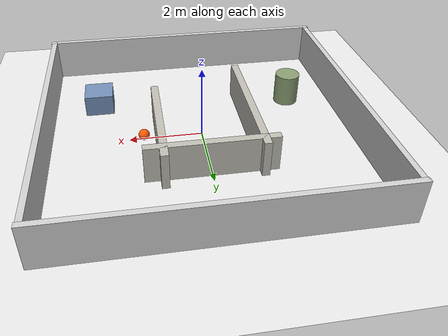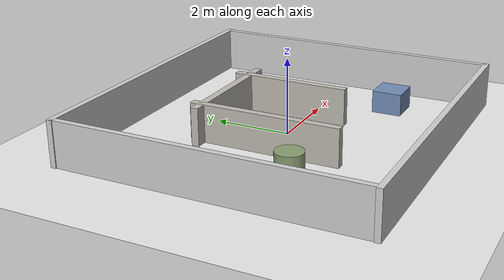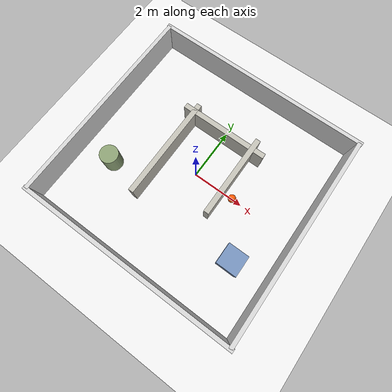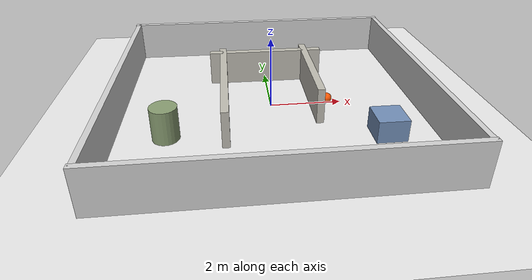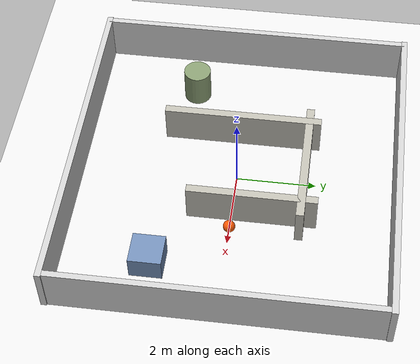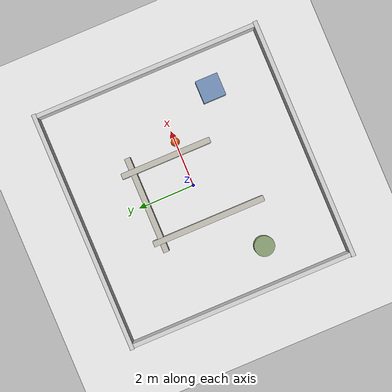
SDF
<?xml version="1.0"?>
<sdf version="1.9">
  <world name="robis_turtlebot3_like">
    <gravity>0 0 -9.8</gravity>
    <magnetic_field>6e-06 2.3e-05 -4.2e-05</magnetic_field>
    <atmosphere type="adiabatic"/>

    <plugin filename="gz-sim-physics-system" name="gz::sim::systems::Physics"/>
    <plugin filename="gz-sim-user-commands-system" name="gz::sim::systems::UserCommands"/>
    <plugin filename="gz-sim-scene-broadcaster-system" name="gz::sim::systems::SceneBroadcaster"/>
    <plugin filename="gz-sim-sensors-system" name="gz::sim::systems::Sensors">
      <render_engine>ogre2</render_engine>
    </plugin>

    <light type="directional" name="sun">
      <cast_shadows>true</cast_shadows>
      <pose>0 0 10 0 0 0</pose>
      <diffuse>0.8 0.8 0.8 1</diffuse>
      <specular>0.2 0.2 0.2 1</specular>
      <attenuation>
        <range>1000</range>
        <constant>0.9</constant>
        <linear>0.01</linear>
        <quadratic>0.001</quadratic>
      </attenuation>
      <direction>-0.5 0.1 -0.9</direction>
    </light>

    <model name="ground_plane">
      <static>true</static>
      <link name="link">
        <collision name="collision">
          <geometry>
            <plane>
              <normal>0 0 1</normal>
              <size>40 40</size>
            </plane>
          </geometry>
        </collision>
        <visual name="visual">
          <geometry>
            <plane>
              <normal>0 0 1</normal>
              <size>40 40</size>
            </plane>
          </geometry>
          <material>
            <ambient>0.92 0.92 0.92 1</ambient>
            <diffuse>0.92 0.92 0.92 1</diffuse>
            <specular>0.05 0.05 0.05 1</specular>
          </material>
        </visual>
      </link>
    </model>

    <model name="outer_walls">
      <static>true</static>
      <pose>0 0 0 0 0 0</pose>
      <link name="walls">
        <collision name="north_collision">
          <pose>0 4 0.6 0 0 0</pose>
          <geometry>
            <box>
              <size>8.5 0.15 1.2</size>
            </box>
          </geometry>
        </collision>
        <collision name="south_collision">
          <pose>0 -4 0.6 0 0 0</pose>
          <geometry>
            <box>
              <size>8.5 0.15 1.2</size>
            </box>
          </geometry>
        </collision>
        <collision name="east_collision">
          <pose>4.15 0 0.6 0 0 0</pose>
          <geometry>
            <box>
              <size>0.15 8.0 1.2</size>
            </box>
          </geometry>
        </collision>
        <collision name="west_collision">
          <pose>-4.15 0 0.6 0 0 0</pose>
          <geometry>
            <box>
              <size>0.15 8.0 1.2</size>
            </box>
          </geometry>
        </collision>

        <visual name="north_visual">
          <pose>0 4 0.6 0 0 0</pose>
          <geometry>
            <box>
              <size>8.5 0.15 1.2</size>
            </box>
          </geometry>
          <material>
            <ambient>0.82 0.82 0.82 1</ambient>
            <diffuse>0.82 0.82 0.82 1</diffuse>
          </material>
        </visual>
        <visual name="south_visual">
          <pose>0 -4 0.6 0 0 0</pose>
          <geometry>
            <box>
              <size>8.5 0.15 1.2</size>
            </box>
          </geometry>
          <material>
            <ambient>0.82 0.82 0.82 1</ambient>
            <diffuse>0.82 0.82 0.82 1</diffuse>
          </material>
        </visual>
        <visual name="east_visual">
          <pose>4.15 0 0.6 0 0 0</pose>
          <geometry>
            <box>
              <size>0.15 8.0 1.2</size>
            </box>
          </geometry>
          <material>
            <ambient>0.82 0.82 0.82 1</ambient>
            <diffuse>0.82 0.82 0.82 1</diffuse>
          </material>
        </visual>
        <visual name="west_visual">
          <pose>-4.15 0 0.6 0 0 0</pose>
          <geometry>
            <box>
              <size>0.15 8.0 1.2</size>
            </box>
          </geometry>
          <material>
            <ambient>0.82 0.82 0.82 1</ambient>
            <diffuse>0.82 0.82 0.82 1</diffuse>
          </material>
        </visual>
      </link>
    </model>

    <model name="interior_blocks">
      <static>true</static>
      <pose>0 0 0 0 0 0</pose>
      <link name="maze">
        <collision name="center_wall_1">
          <pose>-1.3 0.0 0.5 0 0 0</pose>
          <geometry>
            <box>
              <size>0.2 4.0 1.0</size>
            </box>
          </geometry>
        </collision>
        <collision name="center_wall_2">
          <pose>1.2 0.5 0.5 0 0 0</pose>
          <geometry>
            <box>
              <size>0.2 3.2 1.0</size>
            </box>
          </geometry>
        </collision>
        <collision name="horizontal_wall">
          <pose>0.0 1.7 0.5 0 0 0</pose>
          <geometry>
            <box>
              <size>3.4 0.2 1.0</size>
            </box>
          </geometry>
        </collision>
        <collision name="small_box">
          <pose>2.8 -1.8 0.3 0 0 0</pose>
          <geometry>
            <box>
              <size>0.8 0.8 0.6</size>
            </box>
          </geometry>
        </collision>
        <collision name="pillar">
          <pose>-2.8 -1.4 0.45 0 0 0</pose>
          <geometry>
            <cylinder>
              <radius>0.35</radius>
              <length>0.9</length>
            </cylinder>
          </geometry>
        </collision>

        <visual name="center_wall_1_visual">
          <pose>-1.3 0.0 0.5 0 0 0</pose>
          <geometry>
            <box>
              <size>0.2 4.0 1.0</size>
            </box>
          </geometry>
          <material>
            <ambient>0.75 0.74 0.70 1</ambient>
            <diffuse>0.75 0.74 0.70 1</diffuse>
          </material>
        </visual>
        <visual name="center_wall_2_visual">
          <pose>1.2 0.5 0.5 0 0 0</pose>
          <geometry>
            <box>
              <size>0.2 3.2 1.0</size>
            </box>
          </geometry>
          <material>
            <ambient>0.75 0.74 0.70 1</ambient>
            <diffuse>0.75 0.74 0.70 1</diffuse>
          </material>
        </visual>
        <visual name="horizontal_wall_visual">
          <pose>0.0 1.7 0.5 0 0 0</pose>
          <geometry>
            <box>
              <size>3.4 0.2 1.0</size>
            </box>
          </geometry>
          <material>
            <ambient>0.75 0.74 0.70 1</ambient>
            <diffuse>0.75 0.74 0.70 1</diffuse>
          </material>
        </visual>
        <visual name="small_box_visual">
          <pose>2.8 -1.8 0.3 0 0 0</pose>
          <geometry>
            <box>
              <size>0.8 0.8 0.6</size>
            </box>
          </geometry>
          <material>
            <ambient>0.45 0.56 0.72 1</ambient>
            <diffuse>0.45 0.56 0.72 1</diffuse>
          </material>
        </visual>
        <visual name="pillar_visual">
          <pose>-2.8 -1.4 0.45 0 0 0</pose>
          <geometry>
            <cylinder>
              <radius>0.35</radius>
              <length>0.9</length>
            </cylinder>
          </geometry>
          <material>
            <ambient>0.54 0.62 0.45 1</ambient>
            <diffuse>0.54 0.62 0.45 1</diffuse>
          </material>
        </visual>
      </link>
    </model>

    <model name="orange_ball">
      <static>true</static>
      <pose>1.6 0 0.15 0 0 0</pose>
      <link name="ball">
        <collision name="collision">
          <geometry>
            <sphere>
              <radius>0.15</radius>
            </sphere>
          </geometry>
        </collision>
        <visual name="visual">
          <geometry>
            <sphere>
              <radius>0.15</radius>
            </sphere>
          </geometry>
          <material>
            <ambient>1.0 0.35 0.02 1</ambient>
            <diffuse>1.0 0.35 0.02 1</diffuse>
            <specular>0.2 0.1 0.02 1</specular>
          </material>
        </visual>
      </link>
    </model>
  </world>
</sdf>
